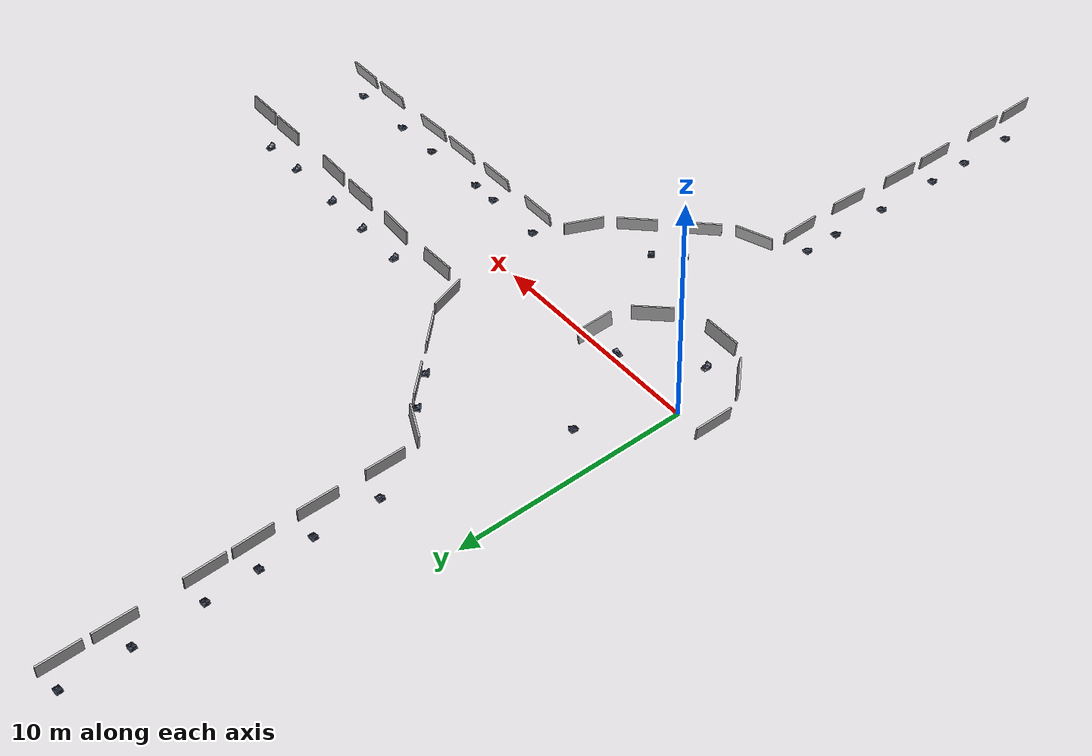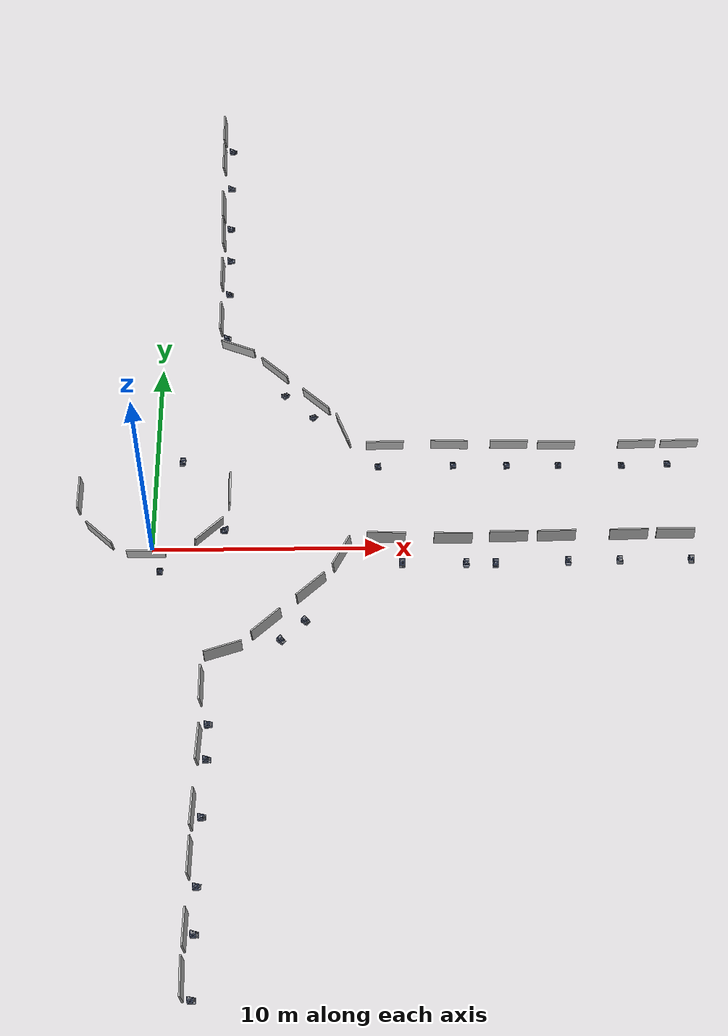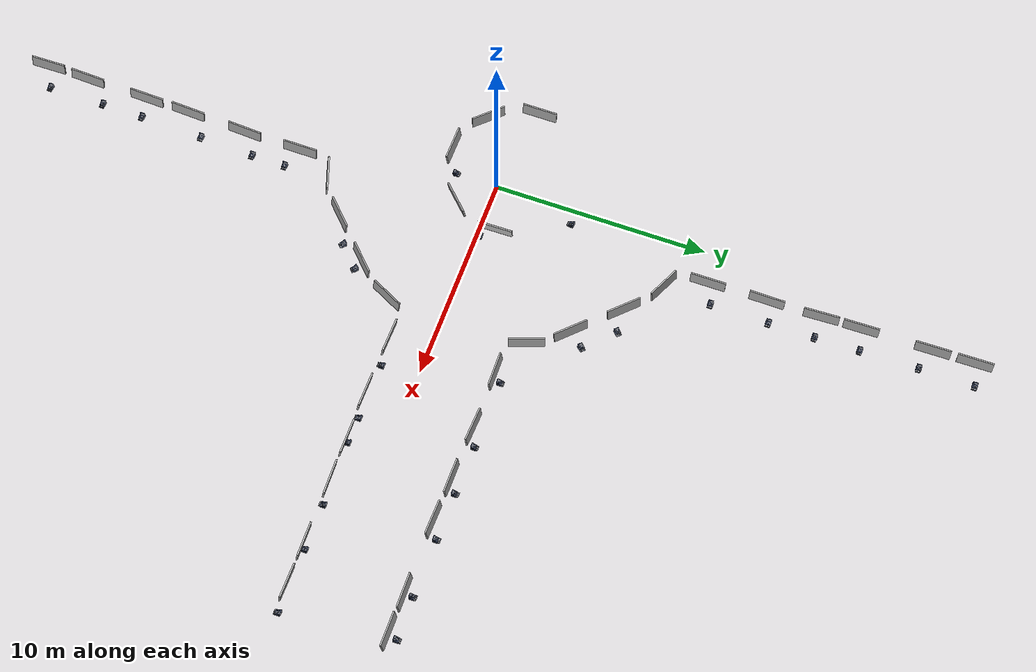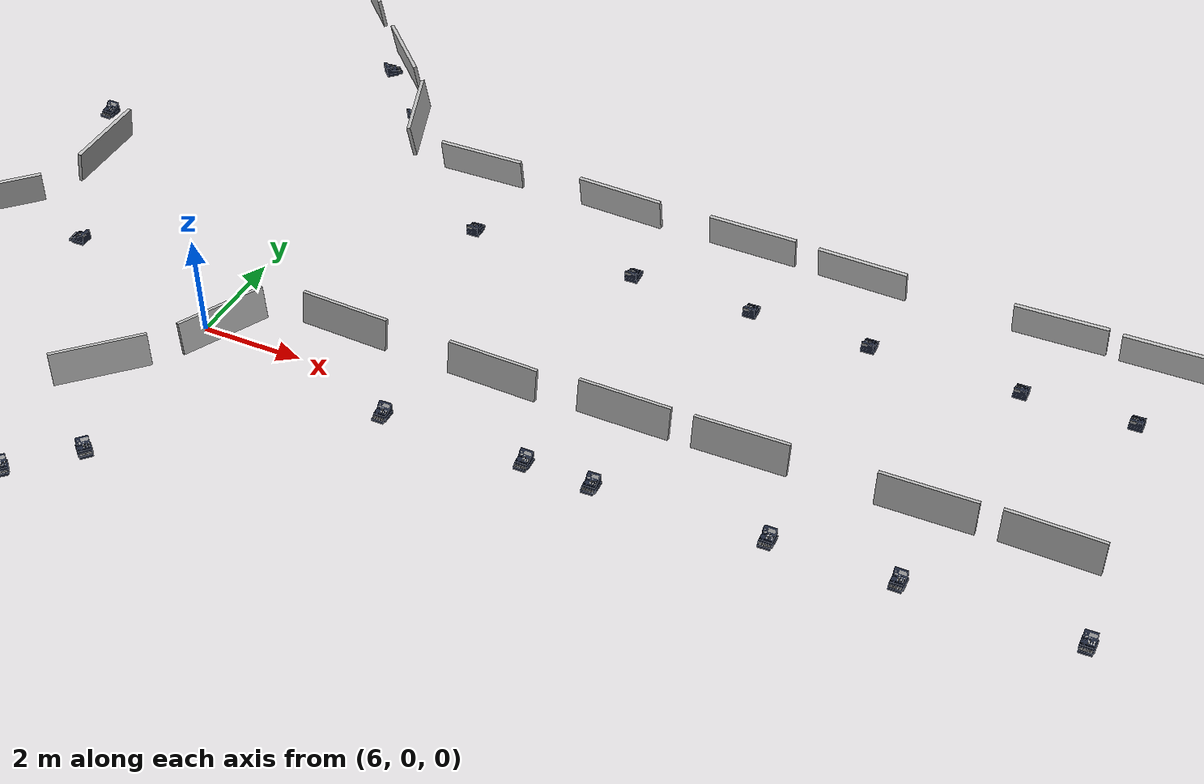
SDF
<sdf version="1.7">
 <world name="default">
  <model name="arena_hawker_centre_food_sign_2">
   <pose>0.911927 0.209526 -1.76871 -0.004251 0.002016 0.779186</pose>
   <static>1</static>
   <link name="body">
    <visual name="visual">
     <geometry>
      <mesh><uri>model://arena_hawker_centre_food_sign_2/media/arena_hawker_centre_food_sign_2.dae</uri></mesh>
     </geometry>
    </visual>
    <collision name="collision">
     <geometry>
      <mesh><uri>model://arena_hawker_centre_food_sign_2/media/arena_hawker_centre_food_sign_2.dae</uri></mesh>
     </geometry>
    </collision>
   </link>
  </model>
  <model name="arena_hawker_centre_food_sign_2_clone_3">
   <pose>5.30715 -20.1037 -1.76831 -0.004406 -0.001651 -0.022207</pose>
   <static>1</static>
   <link name="body">
    <visual name="visual">
     <geometry>
      <mesh><uri>model://arena_hawker_centre_food_sign_2/media/arena_hawker_centre_food_sign_2.dae</uri></mesh>
     </geometry>
    </visual>
    <collision name="collision">
     <geometry>
      <mesh><uri>model://arena_hawker_centre_food_sign_2/media/arena_hawker_centre_food_sign_2.dae</uri></mesh>
     </geometry>
    </collision>
   </link>
  </model>
  <model name="arena_hawker_centre_food_sign_2_clone_4">
   <pose>10.3568 -4.40728 -1.75301 -0.003314 -0.00334 -0.45298</pose>
   <static>1</static>
   <link name="body">
    <visual name="visual">
     <geometry>
      <mesh><uri>model://arena_hawker_centre_food_sign_2/media/arena_hawker_centre_food_sign_2.dae</uri></mesh>
     </geometry>
    </visual>
    <collision name="collision">
     <geometry>
      <mesh><uri>model://arena_hawker_centre_food_sign_2/media/arena_hawker_centre_food_sign_2.dae</uri></mesh>
     </geometry>
    </collision>
   </link>
  </model>
  <model name="arena_hawker_centre_food_sign_2_clone_5">
   <pose>21.7618 6.39417 -1.79854 0.015684 0.004659 1.58625</pose>
   <static>1</static>
   <link name="body">
    <visual name="visual">
     <geometry>
      <mesh><uri>model://arena_hawker_centre_food_sign_2/media/arena_hawker_centre_food_sign_2.dae</uri></mesh>
     </geometry>
    </visual>
    <collision name="collision">
     <geometry>
      <mesh><uri>model://arena_hawker_centre_food_sign_2/media/arena_hawker_centre_food_sign_2.dae</uri></mesh>
     </geometry>
    </collision>
   </link>
  </model>
  <model name="arena_hawker_centre_food_sign_2_clone_6">
   <pose>5.73289 11.3099 -1.77028 -0.003238 0.003414 1.14825</pose>
   <static>1</static>
   <link name="body">
    <visual name="visual">
     <geometry>
      <mesh><uri>model://arena_hawker_centre_food_sign_2/media/arena_hawker_centre_food_sign_2.dae</uri></mesh>
     </geometry>
    </visual>
    <collision name="collision">
     <geometry>
      <mesh><uri>model://arena_hawker_centre_food_sign_2/media/arena_hawker_centre_food_sign_2.dae</uri></mesh>
     </geometry>
    </collision>
   </link>
  </model>
  <model name="arena_hawker_centre_food_sign_4_clone">
   <pose>5.54365 22.0322 -1.75761 0.021093 -0.010669 0.016324</pose>
   <static>1</static>
   <link name="body">
    <visual name="visual">
     <geometry>
      <mesh><uri>model://arena_hawker_centre_food_sign_4/media/arena_hawker_centre_food_sign_4.dae</uri></mesh>
     </geometry>
    </visual>
    <collision name="collision">
     <geometry>
      <mesh><uri>model://arena_hawker_centre_food_sign_4/media/arena_hawker_centre_food_sign_4.dae</uri></mesh>
     </geometry>
    </collision>
   </link>
  </model>
  <model name="arena_hawker_centre_food_sign_4_clone_2">
   <pose>5.55772 -9.47702 -1.74272 0.007138 -0.009863 0.005118</pose>
   <static>1</static>
   <link name="body">
    <visual name="visual">
     <geometry>
      <mesh><uri>model://arena_hawker_centre_food_sign_4/media/arena_hawker_centre_food_sign_4.dae</uri></mesh>
     </geometry>
    </visual>
    <collision name="collision">
     <geometry>
      <mesh><uri>model://arena_hawker_centre_food_sign_4/media/arena_hawker_centre_food_sign_4.dae</uri></mesh>
     </geometry>
    </collision>
   </link>
  </model>
  <model name="arena_hawker_centre_food_sign_4_clone_3">
   <pose>16.1947 -4.32239 -1.74883 0.009653 -0.010258 -1.54508</pose>
   <static>1</static>
   <link name="body">
    <visual name="visual">
     <geometry>
      <mesh><uri>model://arena_hawker_centre_food_sign_4/media/arena_hawker_centre_food_sign_4.dae</uri></mesh>
     </geometry>
    </visual>
    <collision name="collision">
     <geometry>
      <mesh><uri>model://arena_hawker_centre_food_sign_4/media/arena_hawker_centre_food_sign_4.dae</uri></mesh>
     </geometry>
    </collision>
   </link>
  </model>
  <model name="arena_hawker_centre_food_sign_4_clone_4">
   <pose>10.9035 6.45495 -1.82681 0.022744 0.010185 1.58891</pose>
   <static>1</static>
   <link name="body">
    <visual name="visual">
     <geometry>
      <mesh><uri>model://arena_hawker_centre_food_sign_4/media/arena_hawker_centre_food_sign_4.dae</uri></mesh>
     </geometry>
    </visual>
    <collision name="collision">
     <geometry>
      <mesh><uri>model://arena_hawker_centre_food_sign_4/media/arena_hawker_centre_food_sign_4.dae</uri></mesh>
     </geometry>
    </collision>
   </link>
  </model>
  <model name="arena_hawker_centre_food_sign_4_clone_5">
   <pose>5.64203 16.9148 -1.71032 0.012676 -0.009646 0.026514</pose>
   <static>1</static>
   <link name="body">
    <visual name="visual">
     <geometry>
      <mesh><uri>model://arena_hawker_centre_food_sign_4/media/arena_hawker_centre_food_sign_4.dae</uri></mesh>
     </geometry>
    </visual>
    <collision name="collision">
     <geometry>
      <mesh><uri>model://arena_hawker_centre_food_sign_4/media/arena_hawker_centre_food_sign_4.dae</uri></mesh>
     </geometry>
    </collision>
   </link>
  </model>
  <model name="arena_hawker_centre_food_sign_5">
   <pose>0.483695 2.02864 -1.79638 0.0265 -0 -3.12356</pose>
   <static>1</static>
   <link name="body">
    <visual name="visual">
     <geometry>
      <mesh><uri>model://arena_hawker_centre_food_sign_5/media/arena_hawker_centre_food_sign_5.dae</uri></mesh>
     </geometry>
    </visual>
    <collision name="collision">
     <geometry>
      <mesh><uri>model://arena_hawker_centre_food_sign_5/media/arena_hawker_centre_food_sign_5.dae</uri></mesh>
     </geometry>
    </collision>
   </link>
  </model>
  <model name="arena_hawker_centre_food_sign_5_clone_2">
   <pose>5.4567 -12.2683 -1.75527 0.020298 0.000336 -0.050771</pose>
   <static>1</static>
   <link name="body">
    <visual name="visual">
     <geometry>
      <mesh><uri>model://arena_hawker_centre_food_sign_5/media/arena_hawker_centre_food_sign_5.dae</uri></mesh>
     </geometry>
    </visual>
    <collision name="collision">
     <geometry>
      <mesh><uri>model://arena_hawker_centre_food_sign_5/media/arena_hawker_centre_food_sign_5.dae</uri></mesh>
     </geometry>
    </collision>
   </link>
  </model>
  <model name="arena_hawker_centre_food_sign_5_clone_3">
   <pose>14.1418 -4.38549 -1.69789 0.011537 -0.026496 -1.56915</pose>
   <static>1</static>
   <link name="body">
    <visual name="visual">
     <geometry>
      <mesh><uri>model://arena_hawker_centre_food_sign_5/media/arena_hawker_centre_food_sign_5.dae</uri></mesh>
     </geometry>
    </visual>
    <collision name="collision">
     <geometry>
      <mesh><uri>model://arena_hawker_centre_food_sign_5/media/arena_hawker_centre_food_sign_5.dae</uri></mesh>
     </geometry>
    </collision>
   </link>
  </model>
  <model name="arena_hawker_centre_food_sign_5_clone_4">
   <pose>13.8705 6.3282 -1.86865 0.017765 0.026448 1.52621</pose>
   <static>1</static>
   <link name="body">
    <visual name="visual">
     <geometry>
      <mesh><uri>model://arena_hawker_centre_food_sign_5/media/arena_hawker_centre_food_sign_5.dae</uri></mesh>
     </geometry>
    </visual>
    <collision name="collision">
     <geometry>
      <mesh><uri>model://arena_hawker_centre_food_sign_5/media/arena_hawker_centre_food_sign_5.dae</uri></mesh>
     </geometry>
    </collision>
   </link>
  </model>
  <model name="arena_hawker_centre_food_sign_5_clone_5">
   <pose>5.65989 15.2112 -1.73341 0.022626 0.00063 0.041796</pose>
   <static>1</static>
   <link name="body">
    <visual name="visual">
     <geometry>
      <mesh><uri>model://arena_hawker_centre_food_sign_5/media/arena_hawker_centre_food_sign_5.dae</uri></mesh>
     </geometry>
    </visual>
    <collision name="collision">
     <geometry>
      <mesh><uri>model://arena_hawker_centre_food_sign_5/media/arena_hawker_centre_food_sign_5.dae</uri></mesh>
     </geometry>
    </collision>
   </link>
  </model>
  <model name="arena_hawker_centre_food_sign_6">
   <pose>0.02993 0.092063 -1.83428 0.023472 -0 0</pose>
   <static>1</static>
   <link name="body">
    <visual name="visual">
     <geometry>
      <mesh><uri>model://arena_hawker_centre_food_sign_6/media/arena_hawker_centre_food_sign_6.dae</uri></mesh>
     </geometry>
    </visual>
    <collision name="collision">
     <geometry>
      <mesh><uri>model://arena_hawker_centre_food_sign_6/media/arena_hawker_centre_food_sign_6.dae</uri></mesh>
     </geometry>
    </collision>
   </link>
  </model>
  <model name="arena_hawker_centre_food_sign_6_clone_3">
   <pose>5.31505 -21.8164 -1.76763 0.023468 -0.000428 0.01825</pose>
   <static>1</static>
   <link name="body">
    <visual name="visual">
     <geometry>
      <mesh><uri>model://arena_hawker_centre_food_sign_6/media/arena_hawker_centre_food_sign_6.dae</uri></mesh>
     </geometry>
    </visual>
    <collision name="collision">
     <geometry>
      <mesh><uri>model://arena_hawker_centre_food_sign_6/media/arena_hawker_centre_food_sign_6.dae</uri></mesh>
     </geometry>
    </collision>
   </link>
  </model>
  <model name="arena_hawker_centre_food_sign_6_clone_4">
   <pose>8.20841 -6.56149 -1.83238 0.016386 0.016807 -0.797999</pose>
   <static>1</static>
   <link name="body">
    <visual name="visual">
     <geometry>
      <mesh><uri>model://arena_hawker_centre_food_sign_6/media/arena_hawker_centre_food_sign_6.dae</uri></mesh>
     </geometry>
    </visual>
    <collision name="collision">
     <geometry>
      <mesh><uri>model://arena_hawker_centre_food_sign_6/media/arena_hawker_centre_food_sign_6.dae</uri></mesh>
     </geometry>
    </collision>
   </link>
  </model>
  <model name="arena_hawker_centre_food_sign_6_clone_5">
   <pose>23.6105 6.49971 -1.70901 0.016751 -0.023543 1.57723</pose>
   <static>1</static>
   <link name="body">
    <visual name="visual">
     <geometry>
      <mesh><uri>model://arena_hawker_centre_food_sign_6/media/arena_hawker_centre_food_sign_6.dae</uri></mesh>
     </geometry>
    </visual>
    <collision name="collision">
     <geometry>
      <mesh><uri>model://arena_hawker_centre_food_sign_6/media/arena_hawker_centre_food_sign_6.dae</uri></mesh>
     </geometry>
    </collision>
   </link>
  </model>
  <model name="arena_hawker_centre_food_sign_6_clone_6">
   <pose>8.03737 9.24896 -1.73557 0.016542 -0.016653 0.788664</pose>
   <static>1</static>
   <link name="body">
    <visual name="visual">
     <geometry>
      <mesh><uri>model://arena_hawker_centre_food_sign_6/media/arena_hawker_centre_food_sign_6.dae</uri></mesh>
     </geometry>
    </visual>
    <collision name="collision">
     <geometry>
      <mesh><uri>model://arena_hawker_centre_food_sign_6/media/arena_hawker_centre_food_sign_6.dae</uri></mesh>
     </geometry>
    </collision>
   </link>
  </model>
  <model name="arena_hawker_centre_food_sign_8_clone_2">
   <pose>3.44313 -9.93766 -1.79386 0.018615 -0.006928 -1.24421</pose>
   <static>1</static>
   <link name="body">
    <visual name="visual">
     <geometry>
      <mesh><uri>model://arena_hawker_centre_food_sign_8/media/arena_hawker_centre_food_sign_8.dae</uri></mesh>
     </geometry>
    </visual>
    <collision name="collision">
     <geometry>
      <mesh><uri>model://arena_hawker_centre_food_sign_8/media/arena_hawker_centre_food_sign_8.dae</uri></mesh>
     </geometry>
    </collision>
   </link>
  </model>
  <model name="arena_hawker_centre_food_sign_8_clone_3">
   <pose>19.2209 -4.24369 -1.78238 0.019844 -0.000854 -1.55744</pose>
   <static>1</static>
   <link name="body">
    <visual name="visual">
     <geometry>
      <mesh><uri>model://arena_hawker_centre_food_sign_8/media/arena_hawker_centre_food_sign_8.dae</uri></mesh>
     </geometry>
    </visual>
    <collision name="collision">
     <geometry>
      <mesh><uri>model://arena_hawker_centre_food_sign_8/media/arena_hawker_centre_food_sign_8.dae</uri></mesh>
     </geometry>
    </collision>
   </link>
  </model>
  <model name="arena_hawker_centre_food_sign_8_clone_4">
   <pose>11.3942 4.50456 -1.72443 0.023659 -0.020527 0.345661</pose>
   <static>1</static>
   <link name="body">
    <visual name="visual">
     <geometry>
      <mesh><uri>model://arena_hawker_centre_food_sign_8/media/arena_hawker_centre_food_sign_8.dae</uri></mesh>
     </geometry>
    </visual>
    <collision name="collision">
     <geometry>
      <mesh><uri>model://arena_hawker_centre_food_sign_8/media/arena_hawker_centre_food_sign_8.dae</uri></mesh>
     </geometry>
    </collision>
   </link>
  </model>
  <model name="arena_hawker_centre_food_sign_8_clone_5">
   <pose>5.61372 20.1638 -1.74057 0.025403 -0.019842 0.015695</pose>
   <static>1</static>
   <link name="body">
    <visual name="visual">
     <geometry>
      <mesh><uri>model://arena_hawker_centre_food_sign_8/media/arena_hawker_centre_food_sign_8.dae</uri></mesh>
     </geometry>
    </visual>
    <collision name="collision">
     <geometry>
      <mesh><uri>model://arena_hawker_centre_food_sign_8/media/arena_hawker_centre_food_sign_8.dae</uri></mesh>
     </geometry>
    </collision>
   </link>
  </model>
  <model name="arena_hawker_centre_food_sign_9">
   <pose>1.19233 1.74773 -1.78132 0.027272 -0 2.36224</pose>
   <static>1</static>
   <link name="body">
    <visual name="visual">
     <geometry>
      <mesh><uri>model://arena_hawker_centre_food_sign_9/media/arena_hawker_centre_food_sign_9.dae</uri></mesh>
     </geometry>
    </visual>
    <collision name="collision">
     <geometry>
      <mesh><uri>model://arena_hawker_centre_food_sign_9/media/arena_hawker_centre_food_sign_9.dae</uri></mesh>
     </geometry>
    </collision>
   </link>
  </model>
  <model name="arena_hawker_centre_food_sign_9_clone_3">
   <pose>5.26905 -15.0862 -1.85308 0.014069 0.018361 -0.040896</pose>
   <static>1</static>
   <link name="body">
    <visual name="visual">
     <geometry>
      <mesh><uri>model://arena_hawker_centre_food_sign_9/media/arena_hawker_centre_food_sign_9.dae</uri></mesh>
     </geometry>
    </visual>
    <collision name="collision">
     <geometry>
      <mesh><uri>model://arena_hawker_centre_food_sign_9/media/arena_hawker_centre_food_sign_9.dae</uri></mesh>
     </geometry>
    </collision>
   </link>
  </model>
  <model name="arena_hawker_centre_food_sign_9_clone_4">
   <pose>11.7524 -4.39557 -1.72976 0.003926 -0.019613 -1.58184</pose>
   <static>1</static>
   <link name="body">
    <visual name="visual">
     <geometry>
      <mesh><uri>model://arena_hawker_centre_food_sign_9/media/arena_hawker_centre_food_sign_9.dae</uri></mesh>
     </geometry>
    </visual>
    <collision name="collision">
     <geometry>
      <mesh><uri>model://arena_hawker_centre_food_sign_9/media/arena_hawker_centre_food_sign_9.dae</uri></mesh>
     </geometry>
    </collision>
   </link>
  </model>
  <model name="arena_hawker_centre_food_sign_9_clone_5">
   <pose>16.2586 6.34384 -1.84249 0.029815 0.020203 1.5673</pose>
   <static>1</static>
   <link name="body">
    <visual name="visual">
     <geometry>
      <mesh><uri>model://arena_hawker_centre_food_sign_9/media/arena_hawker_centre_food_sign_9.dae</uri></mesh>
     </geometry>
    </visual>
    <collision name="collision">
     <geometry>
      <mesh><uri>model://arena_hawker_centre_food_sign_9/media/arena_hawker_centre_food_sign_9.dae</uri></mesh>
     </geometry>
    </collision>
   </link>
  </model>
  <model name="arena_hawker_centre_food_sign_9_clone_6">
   <pose>5.56532 12.5264 -1.79934 0.004693 0.018724 -0.003191</pose>
   <static>1</static>
   <link name="body">
    <visual name="visual">
     <geometry>
      <mesh><uri>model://arena_hawker_centre_food_sign_9/media/arena_hawker_centre_food_sign_9.dae</uri></mesh>
     </geometry>
    </visual>
    <collision name="collision">
     <geometry>
      <mesh><uri>model://arena_hawker_centre_food_sign_9/media/arena_hawker_centre_food_sign_9.dae</uri></mesh>
     </geometry>
    </collision>
   </link>
  </model>
  <model name="arena_hawker_centre_food_sign_10_clone_2">
   <pose>6.45206 -8.35475 -1.8 0.019601 0.002991 -0.801539</pose>
   <static>1</static>
   <link name="body">
    <visual name="visual">
     <geometry>
      <mesh><uri>model://arena_hawker_centre_food_sign_10/media/arena_hawker_centre_food_sign_10.dae</uri></mesh>
     </geometry>
    </visual>
    <collision name="collision">
     <geometry>
      <mesh><uri>model://arena_hawker_centre_food_sign_10/media/arena_hawker_centre_food_sign_10.dae</uri></mesh>
     </geometry>
    </collision>
   </link>
  </model>
  <model name="arena_hawker_centre_food_sign_10_clone_3">
   <pose>21.0701 -4.12748 -1.82235 0.011848 0.015899 -1.58043</pose>
   <static>1</static>
   <link name="body">
    <visual name="visual">
     <geometry>
      <mesh><uri>model://arena_hawker_centre_food_sign_10/media/arena_hawker_centre_food_sign_10.dae</uri></mesh>
     </geometry>
    </visual>
    <collision name="collision">
     <geometry>
      <mesh><uri>model://arena_hawker_centre_food_sign_10/media/arena_hawker_centre_food_sign_10.dae</uri></mesh>
     </geometry>
    </collision>
   </link>
  </model>
  <model name="arena_hawker_centre_food_sign_10_clone_4">
   <pose>9.87091 7.44162 -1.69403 0.017833 -0.019662 0.791021</pose>
   <static>1</static>
   <link name="body">
    <visual name="visual">
     <geometry>
      <mesh><uri>model://arena_hawker_centre_food_sign_10/media/arena_hawker_centre_food_sign_10.dae</uri></mesh>
     </geometry>
    </visual>
    <collision name="collision">
     <geometry>
      <mesh><uri>model://arena_hawker_centre_food_sign_10/media/arena_hawker_centre_food_sign_10.dae</uri></mesh>
     </geometry>
    </collision>
   </link>
  </model>
  <model name="arena_hawker_centre_food_sign_11">
   <pose>1.08755 0.870969 -1.7697 0.008593 -0 1.56384</pose>
   <static>1</static>
   <link name="body">
    <visual name="visual">
     <geometry>
      <mesh><uri>model://arena_hawker_centre_food_sign_11/media/arena_hawker_centre_food_sign_11.dae</uri></mesh>
     </geometry>
    </visual>
    <collision name="collision">
     <geometry>
      <mesh><uri>model://arena_hawker_centre_food_sign_11/media/arena_hawker_centre_food_sign_11.dae</uri></mesh>
     </geometry>
    </collision>
   </link>
  </model>
  <model name="arena_hawker_centre_food_sign_11_clone_3">
   <pose>5.30881 -17.1373 -1.80749 -0.000103 0.008592 -0.018907</pose>
   <static>1</static>
   <link name="body">
    <visual name="visual">
     <geometry>
      <mesh><uri>model://arena_hawker_centre_food_sign_11/media/arena_hawker_centre_food_sign_11.dae</uri></mesh>
     </geometry>
    </visual>
    <collision name="collision">
     <geometry>
      <mesh><uri>model://arena_hawker_centre_food_sign_11/media/arena_hawker_centre_food_sign_11.dae</uri></mesh>
     </geometry>
    </collision>
   </link>
  </model>
  <model name="arena_hawker_centre_food_sign_11_clone_4">
   <pose>8.94347 -4.24368 -1.75855 0.004647 -0.000131 -1.59294</pose>
   <static>1</static>
   <link name="body">
    <visual name="visual">
     <geometry>
      <mesh><uri>model://arena_hawker_centre_food_sign_11/media/arena_hawker_centre_food_sign_11.dae</uri></mesh>
     </geometry>
    </visual>
    <collision name="collision">
     <geometry>
      <mesh><uri>model://arena_hawker_centre_food_sign_11/media/arena_hawker_centre_food_sign_11.dae</uri></mesh>
     </geometry>
    </collision>
   </link>
  </model>
  <model name="arena_hawker_centre_food_sign_11_clone_5">
   <pose>18.3766 6.35918 -1.78909 0.024598 0.000146 1.54685</pose>
   <static>1</static>
   <link name="body">
    <visual name="visual">
     <geometry>
      <mesh><uri>model://arena_hawker_centre_food_sign_11/media/arena_hawker_centre_food_sign_11.dae</uri></mesh>
     </geometry>
    </visual>
    <collision name="collision">
     <geometry>
      <mesh><uri>model://arena_hawker_centre_food_sign_11/media/arena_hawker_centre_food_sign_11.dae</uri></mesh>
     </geometry>
    </collision>
   </link>
  </model>
  <model name="arena_hawker_centre_food_sign_11_clone_6">
   <pose>5.66056 9.91152 -1.78378 0.01757 0.008592 0.007021</pose>
   <static>1</static>
   <link name="body">
    <visual name="visual">
     <geometry>
      <mesh><uri>model://arena_hawker_centre_food_sign_11/media/arena_hawker_centre_food_sign_11.dae</uri></mesh>
     </geometry>
    </visual>
    <collision name="collision">
     <geometry>
      <mesh><uri>model://arena_hawker_centre_food_sign_11/media/arena_hawker_centre_food_sign_11.dae</uri></mesh>
     </geometry>
    </collision>
   </link>
  </model>
  <model name="arena_cash_register_clone">
   <pose>3.89321 0.776881 -2.62921 0 -0 0.007264</pose>
   <static>1</static>
   <link name="body">
    <visual name="visual">
     <geometry><mesh><uri>model://arena_cash_register/media/arena_cash_register.dae</uri></mesh></geometry>
    </visual>
    <collision name="collision">
     <geometry><mesh><uri>model://arena_cash_register/media/arena_cash_register.dae</uri></mesh></geometry>
    </collision>
   </link>
  </model>
  <model name="arena_cash_register_clone_0">
   <pose>0.784262 4.77797 -2.62921 0 -0 1.5123</pose>
   <static>1</static>
   <link name="body">
    <visual name="visual">
     <geometry><mesh><uri>model://arena_cash_register/media/arena_cash_register.dae</uri></mesh></geometry>
    </visual>
    <collision name="collision">
     <geometry><mesh><uri>model://arena_cash_register/media/arena_cash_register.dae</uri></mesh></geometry>
    </collision>
   </link>
  </model>
  <model name="arena_cash_register_clone_1">
   <pose>0.930732 -2.52961 -2.62921 0 0 -1.56754</pose>
   <static>1</static>
   <link name="body">
    <visual name="visual">
     <geometry><mesh><uri>model://arena_cash_register/media/arena_cash_register.dae</uri></mesh></geometry>
    </visual>
    <collision name="collision">
     <geometry><mesh><uri>model://arena_cash_register/media/arena_cash_register.dae</uri></mesh></geometry>
    </collision>
   </link>
  </model>
  <model name="arena_cash_register_clone_clone_clone">
   <pose>5.77521 -4.16958 -2.62921 0 -0 2.3757</pose>
   <static>1</static>
   <link name="body">
    <visual name="visual">
     <geometry><mesh><uri>model://arena_cash_register/media/arena_cash_register.dae</uri></mesh></geometry>
    </visual>
    <collision name="collision">
     <geometry><mesh><uri>model://arena_cash_register/media/arena_cash_register.dae</uri></mesh></geometry>
    </collision>
   </link>
  </model>
  <model name="arena_cash_register_clone_clone_clone_0">
   <pose>4.79274 -5.08288 -2.62921 0 -0 2.33942</pose>
   <static>1</static>
   <link name="body">
    <visual name="visual">
     <geometry><mesh><uri>model://arena_cash_register/media/arena_cash_register.dae</uri></mesh></geometry>
    </visual>
    <collision name="collision">
     <geometry><mesh><uri>model://arena_cash_register/media/arena_cash_register.dae</uri></mesh></geometry>
    </collision>
   </link>
  </model>
  <model name="arena_cash_register_clone_clone_clone_1">
   <pose>2.03856 -9.76923 -2.62921 0 0 -3.11716</pose>
   <static>1</static>
   <link name="body">
    <visual name="visual">
     <geometry><mesh><uri>model://arena_cash_register/media/arena_cash_register.dae</uri></mesh></geometry>
    </visual>
    <collision name="collision">
     <geometry><mesh><uri>model://arena_cash_register/media/arena_cash_register.dae</uri></mesh></geometry>
    </collision>
   </link>
  </model>
  <model name="arena_cash_register_clone_clone_clone_2">
   <pose>2.00948 -11.3255 -2.62921 0 -0 3.10851</pose>
   <static>1</static>
   <link name="body">
    <visual name="visual">
     <geometry><mesh><uri>model://arena_cash_register/media/arena_cash_register.dae</uri></mesh></geometry>
    </visual>
    <collision name="collision">
     <geometry><mesh><uri>model://arena_cash_register/media/arena_cash_register.dae</uri></mesh></geometry>
    </collision>
   </link>
  </model>
  <model name="arena_cash_register_clone_clone_clone_35">
   <pose>2.06809 22.7919 -2.62921 0 0 -3.12246</pose>
   <static>1</static>
   <link name="body">
    <visual name="visual">
     <geometry><mesh><uri>model://arena_cash_register/media/arena_cash_register.dae</uri></mesh></geometry>
    </visual>
    <collision name="collision">
     <geometry><mesh><uri>model://arena_cash_register/media/arena_cash_register.dae</uri></mesh></geometry>
    </collision>
   </link>
  </model>
  <model name="arena_cash_register_clone_clone_clone_41">
   <pose>5.40881 6.8567 -2.62921 0 0 -2.36417</pose>
   <static>1</static>
   <link name="body">
    <visual name="visual">
     <geometry><mesh><uri>model://arena_cash_register/media/arena_cash_register.dae</uri></mesh></geometry>
    </visual>
    <collision name="collision">
     <geometry><mesh><uri>model://arena_cash_register/media/arena_cash_register.dae</uri></mesh></geometry>
    </collision>
   </link>
  </model>
  <model name="arena_cash_register_clone_clone_clone_42">
   <pose>6.68091 5.59064 -2.62921 0 0 -2.34675</pose>
   <static>1</static>
   <link name="body">
    <visual name="visual">
     <geometry><mesh><uri>model://arena_cash_register/media/arena_cash_register.dae</uri></mesh></geometry>
    </visual>
    <collision name="collision">
     <geometry><mesh><uri>model://arena_cash_register/media/arena_cash_register.dae</uri></mesh></geometry>
    </collision>
   </link>
  </model>
  <model name="arena_cash_register_clone_clone_clone_48">
   <pose>22.8165 2.90875 -2.62921 0 0 -1.56136</pose>
   <static>1</static>
   <link name="body">
    <visual name="visual">
     <geometry><mesh><uri>model://arena_cash_register/media/arena_cash_register.dae</uri></mesh></geometry>
    </visual>
    <collision name="collision">
     <geometry><mesh><uri>model://arena_cash_register/media/arena_cash_register.dae</uri></mesh></geometry>
    </collision>
   </link>
  </model>
  <model name="arena_cash_register_clone_clone_clone_50">
   <pose>22.4674 -0.715108 -2.62921 0 -0 1.56982</pose>
   <static>1</static>
   <link name="body">
    <visual name="visual">
     <geometry><mesh><uri>model://arena_cash_register/media/arena_cash_register.dae</uri></mesh></geometry>
    </visual>
    <collision name="collision">
     <geometry><mesh><uri>model://arena_cash_register/media/arena_cash_register.dae</uri></mesh></geometry>
    </collision>
   </link>
  </model>
  <model name="arena_cash_register_clone_clone_clone_50_clone">
   <pose>19.4448 -0.716543 -2.62921 0 -0 1.56982</pose>
   <static>1</static>
   <link name="body">
    <visual name="visual">
     <geometry><mesh><uri>model://arena_cash_register/media/arena_cash_register.dae</uri></mesh></geometry>
    </visual>
    <collision name="collision">
     <geometry><mesh><uri>model://arena_cash_register/media/arena_cash_register.dae</uri></mesh></geometry>
    </collision>
   </link>
  </model>
  <model name="arena_cash_register_clone_clone_clone_50_clone_0">
   <pose>17.261 -0.734819 -2.62921 0 -0 1.56982</pose>
   <static>1</static>
   <link name="body">
    <visual name="visual">
     <geometry><mesh><uri>model://arena_cash_register/media/arena_cash_register.dae</uri></mesh></geometry>
    </visual>
    <collision name="collision">
     <geometry><mesh><uri>model://arena_cash_register/media/arena_cash_register.dae</uri></mesh></geometry>
    </collision>
   </link>
  </model>
  <model name="arena_cash_register_clone_clone_clone_50_clone_1">
   <pose>14.191 -0.812628 -2.62921 0 -0 1.56982</pose>
   <static>1</static>
   <link name="body">
    <visual name="visual">
     <geometry><mesh><uri>model://arena_cash_register/media/arena_cash_register.dae</uri></mesh></geometry>
    </visual>
    <collision name="collision">
     <geometry><mesh><uri>model://arena_cash_register/media/arena_cash_register.dae</uri></mesh></geometry>
    </collision>
   </link>
  </model>
  <model name="arena_cash_register_clone_clone_clone_50_clone_2">
   <pose>12.9453 -0.790264 -2.62921 0 -0 1.56982</pose>
   <static>1</static>
   <link name="body">
    <visual name="visual">
     <geometry><mesh><uri>model://arena_cash_register/media/arena_cash_register.dae</uri></mesh></geometry>
    </visual>
    <collision name="collision">
     <geometry><mesh><uri>model://arena_cash_register/media/arena_cash_register.dae</uri></mesh></geometry>
    </collision>
   </link>
  </model>
  <model name="arena_cash_register_clone_clone_clone_50_clone_3">
   <pose>10.2418 -0.763456 -2.62921 0 -0 1.56982</pose>
   <static>1</static>
   <link name="body">
    <visual name="visual">
     <geometry><mesh><uri>model://arena_cash_register/media/arena_cash_register.dae</uri></mesh></geometry>
    </visual>
    <collision name="collision">
     <geometry><mesh><uri>model://arena_cash_register/media/arena_cash_register.dae</uri></mesh></geometry>
    </collision>
   </link>
  </model>
  <model name="arena_cash_register_clone_clone_clone_2_clone">
   <pose>1.91388 -13.8942 -2.62921 0 -0 3.10851</pose>
   <static>1</static>
   <link name="body">
    <visual name="visual">
     <geometry><mesh><uri>model://arena_cash_register/media/arena_cash_register.dae</uri></mesh></geometry>
    </visual>
    <collision name="collision">
     <geometry><mesh><uri>model://arena_cash_register/media/arena_cash_register.dae</uri></mesh></geometry>
    </collision>
   </link>
  </model>
  <model name="arena_cash_register_clone_clone_clone_2_clone_0">
   <pose>1.84138 -16.8705 -2.62921 0 -0 3.10851</pose>
   <static>1</static>
   <link name="body">
    <visual name="visual">
     <geometry><mesh><uri>model://arena_cash_register/media/arena_cash_register.dae</uri></mesh></geometry>
    </visual>
    <collision name="collision">
     <geometry><mesh><uri>model://arena_cash_register/media/arena_cash_register.dae</uri></mesh></geometry>
    </collision>
   </link>
  </model>
  <model name="arena_cash_register_clone_clone_clone_2_clone_1">
   <pose>1.82434 -18.8363 -2.62921 0 -0 3.10851</pose>
   <static>1</static>
   <link name="body">
    <visual name="visual">
     <geometry><mesh><uri>model://arena_cash_register/media/arena_cash_register.dae</uri></mesh></geometry>
    </visual>
    <collision name="collision">
     <geometry><mesh><uri>model://arena_cash_register/media/arena_cash_register.dae</uri></mesh></geometry>
    </collision>
   </link>
  </model>
  <model name="arena_cash_register_clone_clone_clone_2_clone_2">
   <pose>1.82346 -21.4697 -2.62921 0 -0 3.10851</pose>
   <static>1</static>
   <link name="body">
    <visual name="visual">
     <geometry><mesh><uri>model://arena_cash_register/media/arena_cash_register.dae</uri></mesh></geometry>
    </visual>
    <collision name="collision">
     <geometry><mesh><uri>model://arena_cash_register/media/arena_cash_register.dae</uri></mesh></geometry>
    </collision>
   </link>
  </model>
  <model name="arena_cash_register_clone_clone_clone_35_clone">
   <pose>2.06404 20.2458 -2.62921 0 0 -3.12246</pose>
   <static>1</static>
   <link name="body">
    <visual name="visual">
     <geometry><mesh><uri>model://arena_cash_register/media/arena_cash_register.dae</uri></mesh></geometry>
    </visual>
    <collision name="collision">
     <geometry><mesh><uri>model://arena_cash_register/media/arena_cash_register.dae</uri></mesh></geometry>
    </collision>
   </link>
  </model>
  <model name="arena_cash_register_clone_clone_clone_35_clone_0">
   <pose>2.11825 17.5636 -2.62921 0 0 -3.12246</pose>
   <static>1</static>
   <link name="body">
    <visual name="visual">
     <geometry><mesh><uri>model://arena_cash_register/media/arena_cash_register.dae</uri></mesh></geometry>
    </visual>
    <collision name="collision">
     <geometry><mesh><uri>model://arena_cash_register/media/arena_cash_register.dae</uri></mesh></geometry>
    </collision>
   </link>
  </model>
  <model name="arena_cash_register_clone_clone_clone_35_clone_1">
   <pose>2.17531 15.5047 -2.62921 0 0 -3.12246</pose>
   <static>1</static>
   <link name="body">
    <visual name="visual">
     <geometry><mesh><uri>model://arena_cash_register/media/arena_cash_register.dae</uri></mesh></geometry>
    </visual>
    <collision name="collision">
     <geometry><mesh><uri>model://arena_cash_register/media/arena_cash_register.dae</uri></mesh></geometry>
    </collision>
   </link>
  </model>
  <model name="arena_cash_register_clone_clone_clone_35_clone_2">
   <pose>2.18562 13.3715 -2.62921 0 0 -3.12246</pose>
   <static>1</static>
   <link name="body">
    <visual name="visual">
     <geometry><mesh><uri>model://arena_cash_register/media/arena_cash_register.dae</uri></mesh></geometry>
    </visual>
    <collision name="collision">
     <geometry><mesh><uri>model://arena_cash_register/media/arena_cash_register.dae</uri></mesh></geometry>
    </collision>
   </link>
  </model>
  <model name="arena_cash_register_clone_clone_clone_35_clone_3">
   <pose>2.17268 10.675 -2.62921 0 0 -3.12246</pose>
   <static>1</static>
   <link name="body">
    <visual name="visual">
     <geometry><mesh><uri>model://arena_cash_register/media/arena_cash_register.dae</uri></mesh></geometry>
    </visual>
    <collision name="collision">
     <geometry><mesh><uri>model://arena_cash_register/media/arena_cash_register.dae</uri></mesh></geometry>
    </collision>
   </link>
  </model>
  <model name="arena_cash_register_clone_clone_clone_48_clone_0">
   <pose>20.8157 2.85408 -2.62921 0 0 -1.56136</pose>
   <static>1</static>
   <link name="body">
    <visual name="visual">
     <geometry><mesh><uri>model://arena_cash_register/media/arena_cash_register.dae</uri></mesh></geometry>
    </visual>
    <collision name="collision">
     <geometry><mesh><uri>model://arena_cash_register/media/arena_cash_register.dae</uri></mesh></geometry>
    </collision>
   </link>
  </model>
  <model name="arena_cash_register_clone_clone_clone_48_clone">
   <pose>18.0454 2.88704 -2.62921 0 0 -1.56136</pose>
   <static>1</static>
   <link name="body">
    <visual name="visual">
     <geometry><mesh><uri>model://arena_cash_register/media/arena_cash_register.dae</uri></mesh></geometry>
    </visual>
    <collision name="collision">
     <geometry><mesh><uri>model://arena_cash_register/media/arena_cash_register.dae</uri></mesh></geometry>
    </collision>
   </link>
  </model>
  <model name="arena_cash_register_clone_clone_clone_48_clone_1">
   <pose>15.7941 2.89644 -2.62921 0 0 -1.56136</pose>
   <static>1</static>
   <link name="body">
    <visual name="visual">
     <geometry><mesh><uri>model://arena_cash_register/media/arena_cash_register.dae</uri></mesh></geometry>
    </visual>
    <collision name="collision">
     <geometry><mesh><uri>model://arena_cash_register/media/arena_cash_register.dae</uri></mesh></geometry>
    </collision>
   </link>
  </model>
  <model name="arena_cash_register_clone_clone_clone_48_clone_2">
   <pose>13.4547 2.92933 -2.62921 0 0 -1.56136</pose>
   <static>1</static>
   <link name="body">
    <visual name="visual">
     <geometry><mesh><uri>model://arena_cash_register/media/arena_cash_register.dae</uri></mesh></geometry>
    </visual>
    <collision name="collision">
     <geometry><mesh><uri>model://arena_cash_register/media/arena_cash_register.dae</uri></mesh></geometry>
    </collision>
   </link>
  </model>
  <model name="arena_cash_register_clone_clone_clone_48_clone_3">
   <pose>10.1834 2.92625 -2.62921 0 0 -1.56136</pose>
   <static>1</static>
   <link name="body">
    <visual name="visual">
     <geometry><mesh><uri>model://arena_cash_register/media/arena_cash_register.dae</uri></mesh></geometry>
    </visual>
    <collision name="collision">
     <geometry><mesh><uri>model://arena_cash_register/media/arena_cash_register.dae</uri></mesh></geometry>
    </collision>
   </link>
  </model>
 </world>
</sdf>
